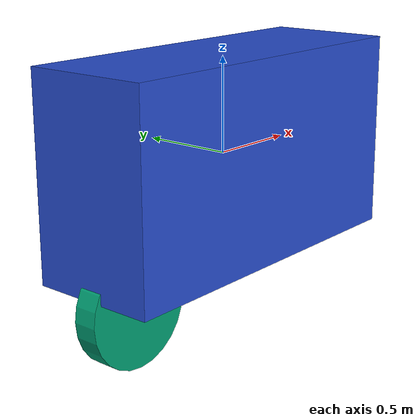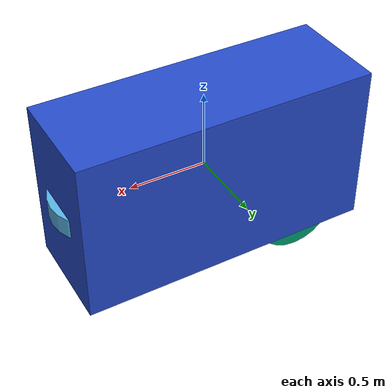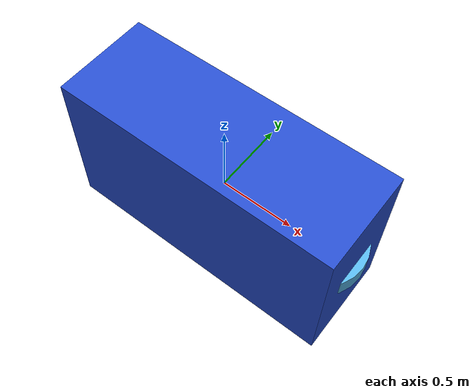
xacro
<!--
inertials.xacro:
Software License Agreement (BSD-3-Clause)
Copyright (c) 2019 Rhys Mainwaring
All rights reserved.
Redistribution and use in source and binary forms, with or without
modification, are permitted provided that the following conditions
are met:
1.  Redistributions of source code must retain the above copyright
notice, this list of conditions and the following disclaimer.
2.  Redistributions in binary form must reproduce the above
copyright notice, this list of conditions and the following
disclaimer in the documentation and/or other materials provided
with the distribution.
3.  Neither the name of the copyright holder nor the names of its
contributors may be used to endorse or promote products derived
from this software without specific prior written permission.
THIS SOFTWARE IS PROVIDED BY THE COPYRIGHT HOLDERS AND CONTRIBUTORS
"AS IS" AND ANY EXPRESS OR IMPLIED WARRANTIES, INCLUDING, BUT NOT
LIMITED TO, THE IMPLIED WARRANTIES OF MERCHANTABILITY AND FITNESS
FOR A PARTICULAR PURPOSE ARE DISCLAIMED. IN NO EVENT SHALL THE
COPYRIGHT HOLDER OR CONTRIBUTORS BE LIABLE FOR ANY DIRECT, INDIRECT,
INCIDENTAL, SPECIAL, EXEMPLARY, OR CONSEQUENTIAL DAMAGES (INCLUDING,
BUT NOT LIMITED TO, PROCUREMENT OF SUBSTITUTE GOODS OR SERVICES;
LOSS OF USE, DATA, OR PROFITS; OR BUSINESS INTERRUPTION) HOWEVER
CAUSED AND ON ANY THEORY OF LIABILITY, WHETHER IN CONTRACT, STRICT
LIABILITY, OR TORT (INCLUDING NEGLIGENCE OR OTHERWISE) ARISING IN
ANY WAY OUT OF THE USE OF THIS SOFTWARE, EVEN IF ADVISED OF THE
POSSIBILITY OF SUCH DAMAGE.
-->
<?xml version="1.0"?>
<robot xmlns:xacro="http://www.ros.org/wiki/xacro" name="ursa_bot">
    <xacro:include filename="$(find ursa_bot_description)/urdf/inertials.xacro"/>

    <!-- Degree-to-radian conversions -->
    <xacro:property name="degrees_45" value="0.785398163"/>
    <xacro:property name="degrees_90" value="1.57079633"/>
    <xacro:property name="degrees_180" value="3.14159265"/>

    <!-- Inertia Generator -->
    <xacro:macro name="default_inertial" params="mass">
        <inertial>
            <mass value="${mass}" />
            <inertia ixx="1.5" ixy="0.0" ixz="0.0" iyy="1.5" iyz="0.0" izz="1.5" />
        </inertial>
    </xacro:macro>

    <!-- Basic Geometry of Body -->
    <xacro:property name="body_length" value="1.91" />
    <xacro:property name="body_width" value="0.680618" />
    <xacro:property name="body_height" value="1.065022" />
    <xacro:property name="body_mass" value="20.3"/>

    <!-- Front Wheel Properties -->
    <xacro:property name="front_wheel_width" value=".254" />
    <xacro:property name="front_wheel_diameter" value="0.605" />
    <xacro:property name="front_wheel_mass" value="20"/>

    <!-- Steering Link Properties -->
    <xacro:property name="steering_width" value="${front_wheel_width/4}" />
    <xacro:property name="steering_diameter" value="${front_wheel_diameter/5}" />
    <xacro:property name="steering_mass" value="2"/>

    <!-- Rear Wheel Properties -->
    <xacro:property name="rear_wheel_width" value="${front_wheel_width+steering_width}" />
    <xacro:property name="rear_wheel_diameter" value="0.635" />
    <xacro:property name="rear_wheel_mass" value="22.8"/>

    <!-- Base Link -->
    <link name="base_link">
        <visual>
            <geometry>
                <box size="${body_length} ${body_width} ${body_height}"/>
            </geometry>
            <material name="blue" />
        </visual>
        <collision>
            <geometry>
                <box size="${body_length} ${body_width} ${body_height}"/>
            </geometry>
        </collision>
        <xacro:solid_cuboid_inertial
            rpy="0 0 0" xyz="0 0 0"
            mass="${body_mass}"
            x="${body_length}" y="${body_width}" z="${body_height}" />
    </link>

    <!-- Steering Macro -->
    <xacro:macro name="steering_link" params="prefix reflect">

        <link name="${prefix}_steering_link">
            <visual>
                <origin xyz="0.0 0.0 0.0" rpy="${degrees_90} 0.0 0.0"/>
                <geometry>
                    <cylinder radius="${steering_diameter}" length="${steering_width}"/>
                </geometry>
            </visual>
            <collision>
                <origin xyz="0.0 0.0 0.0" rpy="${degrees_90} 0.0 0.0"/>
                <geometry>
                    <cylinder radius="${steering_diameter}" length="${steering_width}"/>
                </geometry>
            </collision>
            <xacro:default_inertial mass="${steering_mass}"/>
        </link>

        <joint name="${prefix}_steering_joint" type="revolute">
            <parent link="base_link"/>
            <child link="${prefix}_steering_link"/>
            <axis xyz="0 0 1"/>
            <origin xyz="
                ${(body_length / 2)- 0.1}
                ${(body_width / 2 + steering_width / 2) * reflect}
                ${-(body_height/2) + 0.1}"
                rpy="0 0 0"/>
            <limit lower="-0.30" upper="0.30" effort="100.00" velocity="100.00"/>
        </joint>

        <!-- The Transmission -->

    </xacro:macro>

    <!-- Front Wheel Macro -->
    <xacro:macro name="front_wheel_link" params="prefix reflect">

        <link name="${prefix}_front_wheel">
            <visual>
                <origin xyz="0 0 0" rpy="${degrees_90} 0 0"/>
                <geometry>
                    <cylinder radius="${front_wheel_diameter/2}" length="${front_wheel_width}"/>
                </geometry>
            </visual>
            <collision>
                <origin xyz="0 0 0" rpy="${degrees_90} 0 0"/>
                <geometry>
                    <cylinder radius="${front_wheel_diameter/2}" length="${front_wheel_width}"/>
                </geometry>
            </collision>
            <xacro:solid_cylinder_inertial
                rpy="${degrees_90} 0 0" xyz="0 0 0"
                mass="${front_wheel_mass}"
                radius="${front_wheel_diameter/2}" length="${front_wheel_width}" />
        </link>

        <gazebo reference="${prefix}_front_wheel">
            <material>Gazebo/Blue</material>
        </gazebo>

        <!-- Temporarily join directly to the base_link -->
        <joint name="${prefix}_front_axle" type="continuous">
            <parent link="base_link"/>
            <child link="${prefix}_front_wheel"/>
            <axis xyz="0 1 0"/>
            <origin xyz="
                ${body_length / 2 - 0.1}
                ${(body_width / 2 + steering_width / 2) * reflect + (front_wheel_width/2 + steering_width/2) * reflect}
                ${-(body_height/2) + 0.1}"
                rpy="0 0 0"/>
        </joint>

        <!-- The Transmission -->

        <gazebo>
            <plugin name="${prefix}_mimic_joint_plugin" filename="libroboticsgroup_gazebo_mimic_joint_plugin.so">
                <joint>rear_wheel_joint</joint>
                <mimicJoint>${prefix}_front_axle</mimicJoint>
                <multiplier>1</multiplier>
                <offset>0</offset>
            </plugin>
        </gazebo>

    </xacro:macro>

    <!-- Rear Wheel Macro -->
    <xacro:macro name="rear_wheel_link" params="prefix reflect">

        <link name="${prefix}_rear_wheel">
            <visual>
                <origin xyz="0.0 0.0 0.0" rpy="${degrees_90} 0.0 0.0"/>
                <geometry>
                    <cylinder radius="${rear_wheel_diameter/2}" length="${rear_wheel_width}"/>
                </geometry>
            </visual>
            <collision>
                <origin xyz="0.0 0.0 0.0" rpy="${degrees_90} 0.0 0.0"/>
                <geometry>
                    <cylinder radius="${rear_wheel_diameter/2}" length="${rear_wheel_width}"/>
                </geometry>
            </collision>
            <xacro:solid_cylinder_inertial
                rpy="${degrees_90} 0 0" xyz="0 0 0"
                mass="${rear_wheel_mass}"
                radius="${rear_wheel_diameter/2}" length="${rear_wheel_width}" />
        </link>

        <gazebo reference="${prefix}_rear_wheel">
            <material>Gazebo/Black</material>
        </gazebo>

        <joint name="${prefix}_rear_axle" type="continuous">
            <parent link="base_link"/>
            <child link="${prefix}_rear_wheel"/>
            <axis xyz="0 1 0"/>
            <origin xyz="
                ${-(body_length/2) + 0.1}
                ${(rear_wheel_width/2 + body_width/2) * reflect}
                ${-(body_height/2) + 0.1}"
                rpy="0 0 0" />
            <mimic joint="rear_wheel_joint">
                <multiplier>1</multiplier>
                <offset>0</offset>
            </mimic>
        </joint>

        <!-- The Transmission -->

        <!-- Mimic joint plugin -->
        <gazebo>
            <plugin name="${prefix}_mimic_joint_plugin" filename="libroboticsgroup_gazebo_mimic_joint_plugin.so">
                <joint>rear_wheel_joint</joint>
                <mimicJoint>${prefix}_rear_axle</mimicJoint>
                <!-- if set to true, PID parameters from "/gazebo_ros_control/pid_gains/${mimic_joint}" are loaded -->
                <multiplier>1</multiplier>
                <offset>0</offset>
                <!-- if absolute difference between setpoint and process value is below this threshold, do nothing; 0.0 = disable [rad] -->
                <!-- only taken into account if has_pid:=true [Nm] -->
            </plugin>
        </gazebo>

    </xacro:macro>

    <link name="front_steer">
        <visual>
            <origin xyz="0.0 0.0 0.0" rpy="0.0 0.0 0.0"/>
            <geometry>
                <cylinder radius="${front_wheel_diameter/2}" length="${front_wheel_width/2}"/>
            </geometry>
        </visual>
        <collision>
            <origin xyz="0.0 0.0 0.0" rpy="0.0 0.0 0.0"/>
            <geometry>
                <cylinder radius="${front_wheel_diameter/2}" length="${front_wheel_width/2}"/>
            </geometry>
        </collision>
        <xacro:default_inertial mass="${front_wheel_mass}"/>
    </link>
    <link name="rear_wheel">
        <visual>
            <origin xyz="0.0 0.0 0.0" rpy="${degrees_90} 0.0 0.0"/>
            <geometry>
                <cylinder radius="${front_wheel_diameter/2}" length="${front_wheel_width/2}"/>
            </geometry>
        </visual>
        <collision>
            <origin xyz="0.0 0.0 0.0" rpy="${degrees_90} 0.0 0.0"/>
            <geometry>
                <cylinder radius="${front_wheel_diameter/2}" length="${front_wheel_width/2}"/>
            </geometry>
        </collision>
        <xacro:default_inertial mass="${front_wheel_mass}"/>
    </link>

    <joint name="front_steer_joint" type="revolute">
        <parent link="base_link"/>
        <child link="front_steer"/>
        <axis xyz="0 0 1"/>
        <origin xyz="0.7 0 0" rpy="0 0 0"/>
        <limit lower="-0.50" upper="0.50" effort="1000" velocity="3"/>
    </joint>

    <joint name="rear_wheel_joint" type="continuous">
        <parent link="base_link"/>
        <child link="rear_wheel"/>

        <axis xyz="0 1 0"/>
        <origin xyz="-0.70 0 ${-(body_height/2) - 0.1}" rpy="0 0 0"/>
    </joint>

    <transmission name="front_steer_joint_trans">
        <type>transmission_interface/SimpleTransmission</type>
        <joint name="front_steer_joint">
            <hardwareInterface>hardware_interface/PositionJointInterface</hardwareInterface>
        </joint>
        <actuator name="front_steer_joint_motor">
            <hardwareInterface>hardware_interface/PositionJointInterface</hardwareInterface>
            <mechanicalReduction>1</mechanicalReduction>
        </actuator>
    </transmission>

    <transmission name="rear_wheel_joint_trans">
        <type>transmission_interface/SimpleTransmission</type>
        <joint name="rear_wheel_joint">
            <hardwareInterface>hardware_interface/VelocityJointInterface</hardwareInterface>
        </joint>
        <actuator name="rear_wheel_joint_motor">
            <hardwareInterface>hardware_interface/VelocityJointInterface</hardwareInterface>
            <mechanicalReduction>1</mechanicalReduction>
        </actuator>
    </transmission>

    <!-- Gazebo plugin for ROS Control -->
    <gazebo>
        <plugin name="gazebo_ros_control" filename="libgazebo_ros_control.so">
            <robotNamespace>/ursa_bot</robotNamespace>
            <robotSimType>gazebo_ros_control/DefaultRobotHWSim</robotSimType>
            <legacyModeNS>false</legacyModeNS>
        </plugin>
    </gazebo>
</robot>

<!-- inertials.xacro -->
<!--  xacro macros for intertials.

    Define xacro macros for math constants and inertials:

    - solid cuboid
    - solid cylinder
    - null (a placeholder inertial for logical link elements)
 -->
<robot name="inertials" xmlns:xacro="http://www.ros.org/wiki/xacro">

    <!-- Math constants -->
    <xacro:property name="math_pi"        value="3.141592653589793" />
    <xacro:property name="math_pi_over_2" value="1.5707963267948966" />
    <xacro:property name="math_pi_over_4" value="0.785398163397448" />

    <!-- Inertial for solid cuboid with dimensions x y z  -->
    <xacro:macro name="solid_cuboid_inertial" params="rpy xyz mass x y z">
        <inertial>
            <origin rpy="${rpy}" xyz="${xyz}"/>
            <mass value="${mass}" />
            <inertia
                ixx="${mass * (y * y + z * z) / 12.0}" ixy="0.0" ixz="0.0"
                iyy="${mass * (x * x + z * z) / 12.0}" iyz="0.0"
                izz="${mass * (x * x + y * y) / 12.0}" />
        </inertial>
    </xacro:macro>

    <!-- Inertial for solid cylinder with radius and length aligned to z-axis  -->
    <xacro:macro name="solid_cylinder_inertial" params="rpy xyz mass radius length">
        <inertial>
            <origin rpy="${rpy}" xyz="${xyz}"/>
            <mass value="${mass}" />
            <inertia
                ixx="${mass * (3.0 * radius * radius + length * length) / 12.0}" ixy="0.0" ixz="0.0"
                iyy="${mass * (3.0 * radius * radius + length * length) / 12.0}" iyz="0.0"
                izz="${mass * (radius * radius) / 2.0}" />
        </inertial>
    </xacro:macro>

    <!-- A null inertial - used in placeholder links to esure the model will work in Gazebo -->
    <xacro:macro name="null_inertial">
        <inertial>
            <mass value="0.001"/>
            <inertia ixx="0.001" ixy="0" ixz="0" iyy="0.001" iyz="0" izz="0.001"/>
        </inertial>
    </xacro:macro>
</robot>
